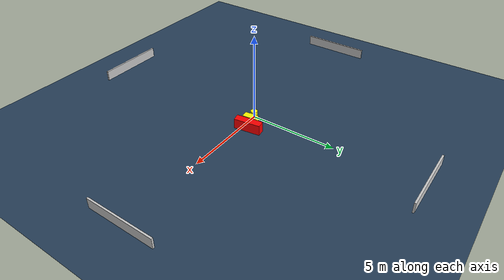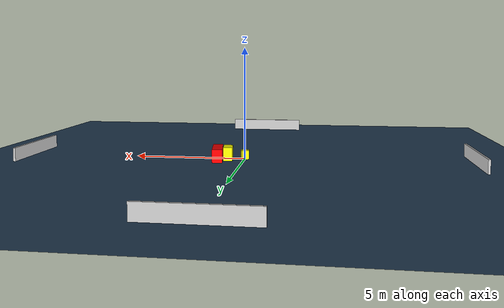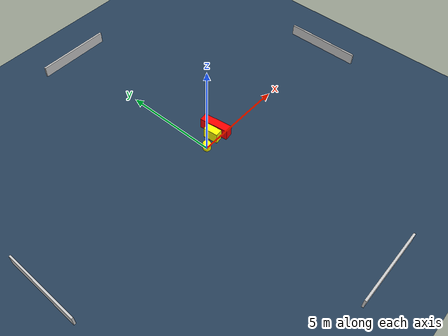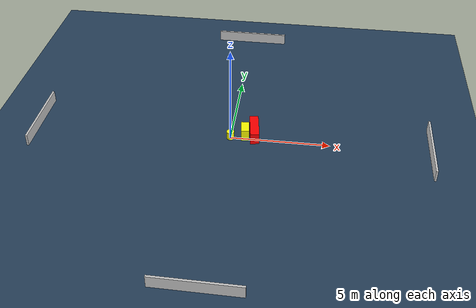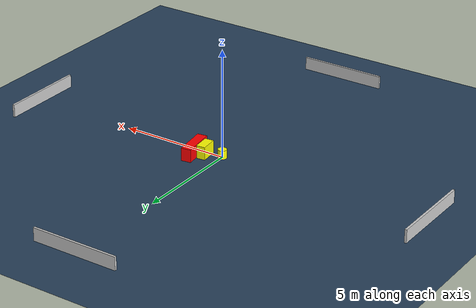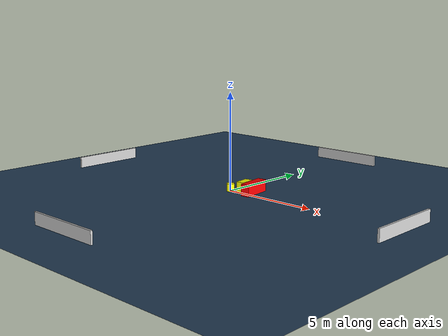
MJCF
<?xml version="1.0" ?>
<mujoco model="generated_environment">
  <option timestep="0.01" integrator="RK4" cone="elliptic"/>
  <default>
    <geom density="1"/>
  </default>
  <asset>
    <texture builtin="gradient" height="3072" name="skybox" rgb1="0.3 0.5 0.7" rgb2="0 0 0" type="skybox" width="512"/>
    <texture builtin="checker" height="300" name="groundplane" rgb1="0.2 0.3 0.4" rgb2="0.1 0.2 0.3" type="2d" width="300"/>
    <material name="groundplane" reflectance="0.2" texrepeat="5 5" texture="groundplane"/>
  </asset>
  <worldbody>
    <light dir="0 0 -1" directional="true" pos="0 0 1.5"/>
    <geom condim="3" friction="0.5 0.005 0.001" material="groundplane" name="floor" pos="0 0 0" size="0 0 0.05" type="plane"/>
    <body name="walls">
      <geom name="wall_1" condim="4" pos="-10.0 0.0 0.3" rgba="0.800000011920929 0.800000011920929 0.800000011920929 1.0" size="0.05 2.0 0.3" type="box"/>
      <geom name="wall_2" condim="4" pos="10.0 0.0 0.3" rgba="0.800000011920929 0.800000011920929 0.800000011920929 1.0" size="0.05 2.0 0.3" type="box"/>
      <geom name="wall_3" condim="4" pos="0.0 -10.0 0.3" rgba="0.800000011920929 0.800000011920929 0.800000011920929 1.0" size="2.0 0.05 0.3" type="box"/>
      <geom name="wall_4" condim="4" pos="0.0 10.0 0.3" rgba="0.800000011920929 0.800000011920929 0.800000011920929 1.0" size="2.0 0.05 0.3" type="box"/>
    </body>
    <body name="robot">
      <joint name="joint_x" type="slide" pos="0 0 0" axis="1 0 0"/>
      <joint name="joint_y" type="slide" pos="0 0 0" axis="0 1 0"/>
      <geom name="robot" type="cylinder" pos="0.0 0.0 0.2" size="0.2 0.2 0.0" mass="5.0" friction="1.0 0.005 0.0001" condim="4" rgba="1.0 1.0 0.0 1.0"/>
    </body>
    <body name="obstacle_1_movable">
      <geom name="obstacle_1_movable" condim="4" pos="0.7215721798650967 0.2616603800842359 0.3" euler="0 0 276.2862434119657" friction="0.0 0.005 0.001" rgba="1.0 1.0 0.0 1.0" size="0.3899953634652118 0.2032912129758147 0.3" type="box" mass="0.1"/>
      <joint type="free"/>
    </body>
    <body name="obstacle_2_static">
      <geom name="obstacle_2_static" condim="4" pos="1.1674640470772621 0.4310792104494386 0.3" euler="0 0 278.096899513612" friction="0.0 0.005 0.001" rgba="1.0 0.0 0.0 1.0" size="0.7700894475138835 0.22361746474006808 0.3" type="box"/>
    </body>
  </worldbody>
  <actuator>
    <motor name="actuator_x" joint="joint_x" gear="1" ctrlrange="-1 1"/>
    <motor name="actuator_y" joint="joint_y" gear="1" ctrlrange="-1 1"/>
  </actuator>
</mujoco>
